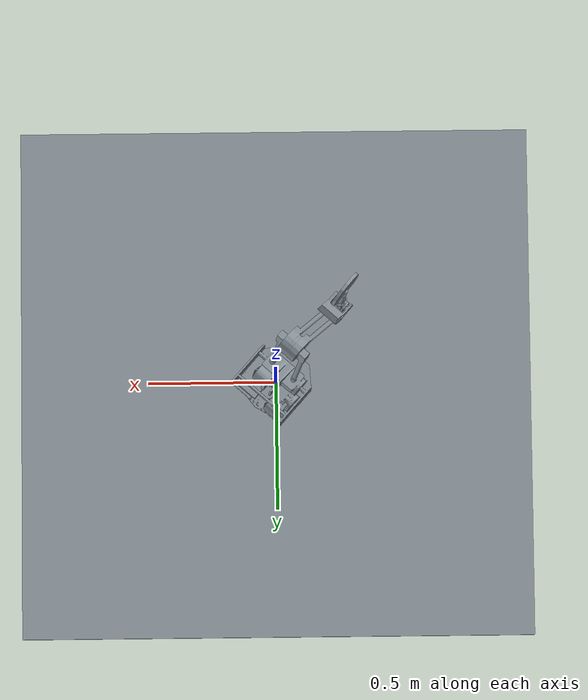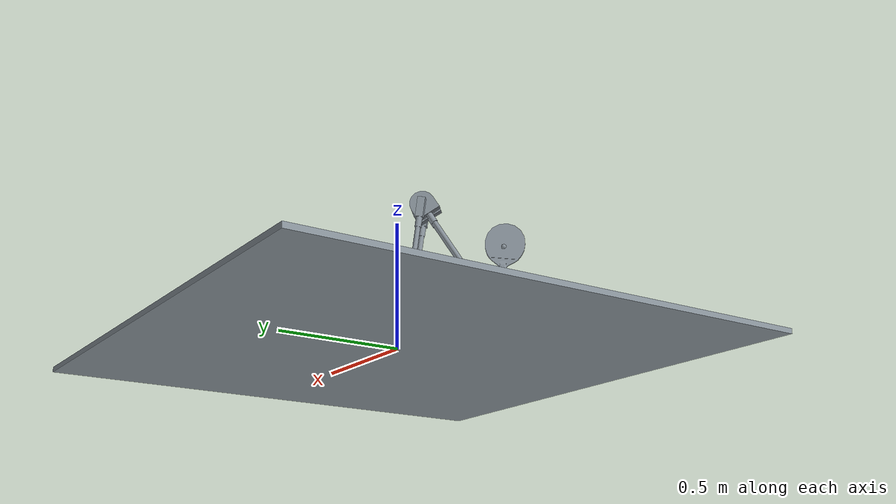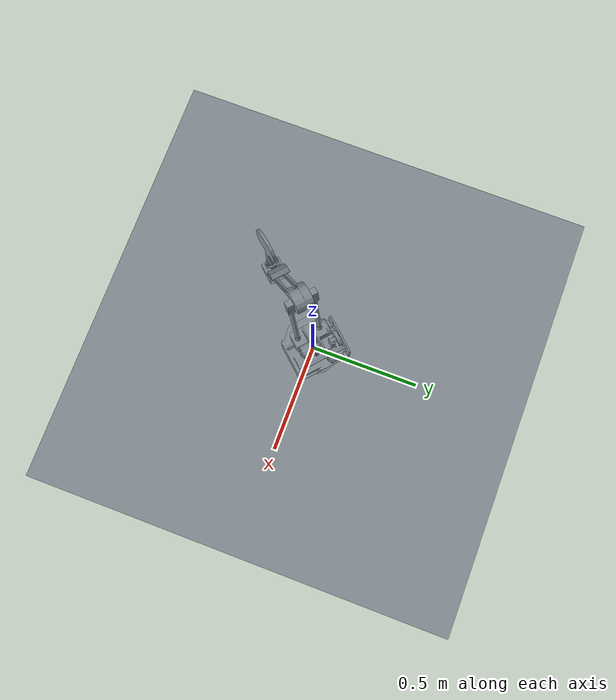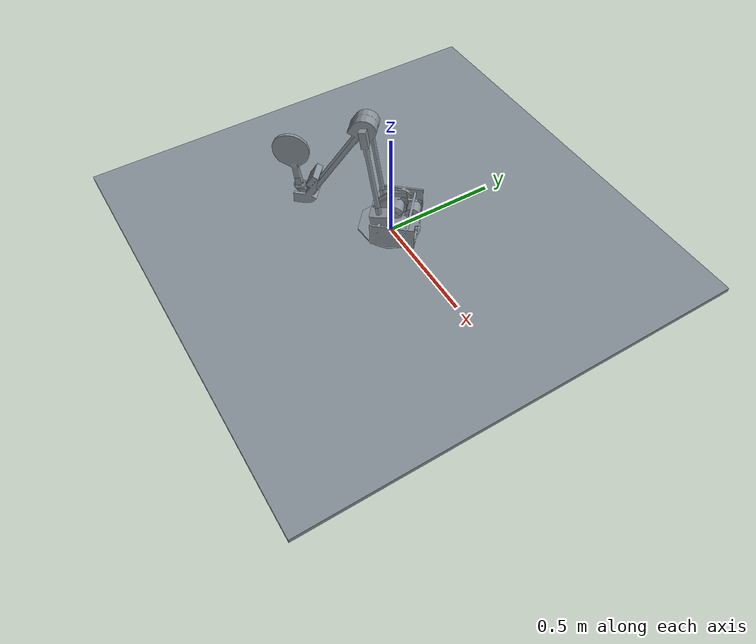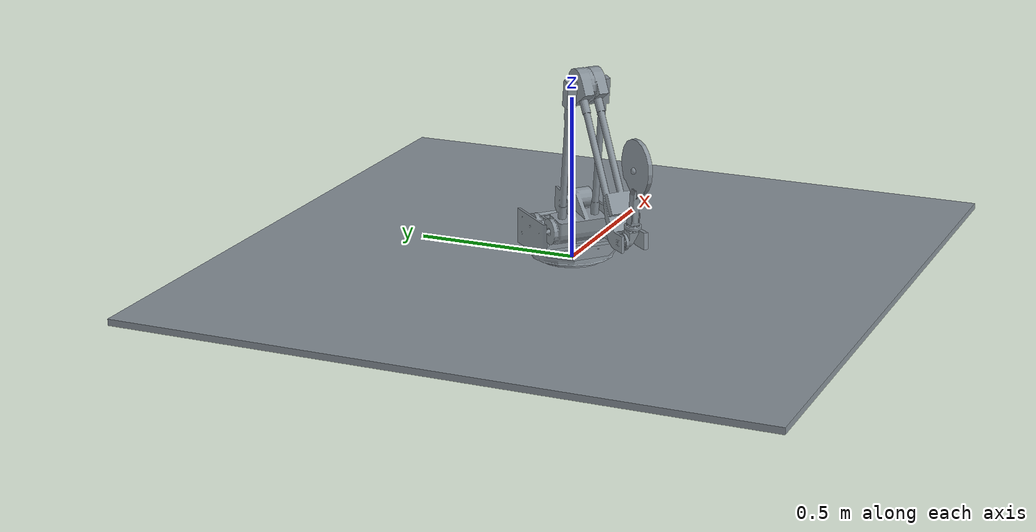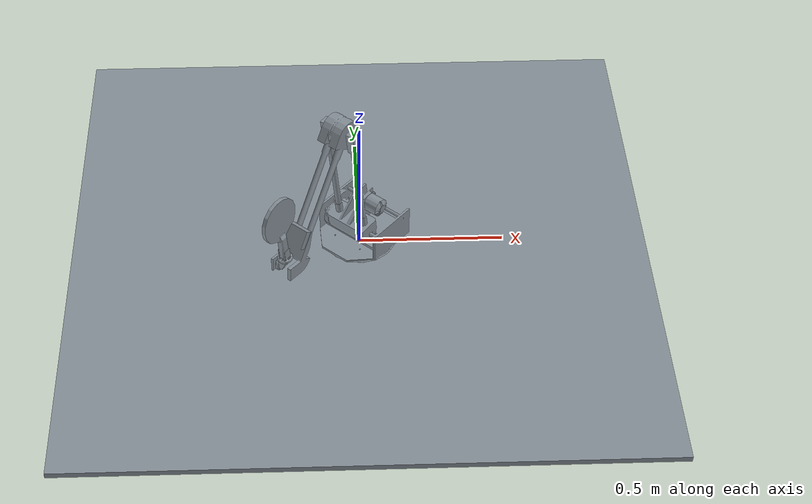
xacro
<?xml version="1.0"?>
<robot xmlns:xacro="http://www.ros.org/wiki/xacro" name="mainarmass">
    <xacro:arg name="initial_positions_file" default="initial_positions.yaml" />

    <!-- Import mainarmass urdf file -->
    <xacro:include filename="$(find mainarmass)/urdf/mainarmass_fixed.urdf" />

    <!-- Import control_xacro -->
    <xacro:include filename="mainarmass.ros2_control.xacro" />

    <xacro:mainarmass_ros2_control name="FakeSystem" initial_positions_file="$(arg initial_positions_file)"/>

</robot>

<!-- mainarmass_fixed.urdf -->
<robot name="mainarmass">
    <material name="black"><color rgba="0.529 0.568 0.6 1" /></material>

    <link name="root">
        <visual>
            <origin xyz="0 0 0" rpy="0 0 0" />
            <geometry><sphere radius="0.001"/></geometry>
            <material name="black" />
        </visual>
    </link>

    <link name="Base">
        <inertial>
            <mass value="0.219" />
            <origin xyz="0 0 0.005" rpy="0 0 0" />
            <inertia ixx="0.0009559" ixy="0" ixz="0" iyy="0.0009559" iyz="0" izz="0.00190814" />
        </inertial>
        <visual>
            <origin xyz="0 0 0" rpy="0 0 0" />
            <geometry><mesh filename="package://mainarmass/meshes/67.stl" scale="1 1 1" /></geometry>
            <material name="black" />
        </visual>
        <collision>
            <origin xyz="0 0 0" rpy="0 0 0" />
            <geometry><mesh filename="package://mainarmass/meshes/67.stl" scale="1 1 1" /></geometry>
        </collision>
    </link>

    <link name="Shoulder">
        <inertial>
            <mass value="3.232" />
            <origin xyz="0.0015 0.0238 0.0500" rpy="0 0 0" />
            <inertia ixx="0.01827653" ixy="0.00349413" ixz="-0.00033063" iyy="0.01968154" iyz="-0.00175414" izz="0.03042546" />
        </inertial>
        <visual>
            <origin xyz="0.0637 0.1917 0.0902" rpy="0 0 0" />
            <geometry><mesh filename="package://mainarmass/meshes/63.stl" scale="1 1 1" /></geometry>
            <material name="black" />
        </visual>
        <collision>
            <origin xyz="0.0637 0.1917 0.0902" rpy="0 0 0" />
            <geometry><mesh filename="package://mainarmass/meshes/63.stl" scale="1 1 1" /></geometry>
        </collision>
    </link>

    <link name="UpperArm">
        <inertial>
            <mass value="1.456" />
            <origin xyz="0.0016 0.0003 0.0734" rpy="0 0 0" />
            <inertia ixx="0.02606584" ixy="-0.00147774" ixz="0.00295468" iyy="0.02661382" iyz="0.00583087" izz="0.00673394" />
        </inertial>
        <visual>
            <origin xyz="-0.0453 0.1279 0.0401" rpy="0 0 0" />
            <geometry><mesh filename="package://mainarmass/meshes/75.stl" scale="1 1 1" /></geometry>
            <material name="black" />
        </visual>
        <collision>
            <origin xyz="-0.0453 0.1279 0.0401" rpy="0 0 0" />
            <geometry><mesh filename="package://mainarmass/meshes/75.stl" scale="1 1 1" /></geometry>
        </collision>
    </link>

    <link name="Forearm">
        <inertial>
            <mass value="0.757" />
            <origin xyz="-0.0255 -0.0694 -0.1516" rpy="0 0 0" />
            <inertia ixx="0.02490527" ixy="-0.00176138" ixz="-0.00375067" iyy="0.02114019" iyz="-0.00953407" izz="0.00606278" />
        </inertial>
        <visual>
            <origin xyz="0.0640 0.2460 -0.3971" rpy="0 0 0" />
            <geometry><mesh filename="package://mainarmass/meshes/79.stl" scale="1 1 1" /></geometry>
            <material name="black" />
        </visual>
        <collision>
            <origin xyz="0.0640 0.2460 -0.3971" rpy="0 0 0" />
            <geometry><mesh filename="package://mainarmass/meshes/79.stl" scale="1 1 1" /></geometry>
        </collision>
    </link>

    <link name="Wrist">
        <inertial>
            <mass value="0.086" />
            <origin xyz="-0.0285 0.0006 0.0133" rpy="0 0 0" />
            <inertia ixx="0.00004728" ixy="-0.00001086" ixz="0.00002008" iyy="0.00005686" iyz="0.00000813" izz="0.00003823" />
        </inertial>
        <visual>
            <origin xyz="0.1232 0.3795 0.0397" rpy="0 0 0" />
            <geometry><mesh filename="package://mainarmass/meshes/59.stl" scale="1 1 1" /></geometry>
            <material name="black" />
        </visual>
        <collision>
            <origin xyz="0.1232 0.3795 0.0397" rpy="0 0 0" />
            <geometry><mesh filename="package://mainarmass/meshes/59.stl" scale="1 1 1" /></geometry>
        </collision>
    </link>

    <link name="Paddle">
        <inertial>
            <mass value="0.355" />
            <origin xyz="-0.0346 -0.0910 0.1368" rpy="0 0 0" />
            <inertia ixx="0.00254292" ixy="-0.0003235" ixz="0.00032513" iyy="0.00177002" iyz="0.00082579" izz="0.00103777" />
        </inertial>
        <visual>
            <origin xyz="0.1494 0.3836 -0.0516" rpy="0 0 0" />
            <geometry><mesh filename="package://mainarmass/meshes/71.stl" scale="1 1 1" /></geometry>
            <material name="black" />
        </visual>
        <collision>
            <origin xyz="0.1494 0.3836 -0.0516" rpy="0 0 0" />
            <geometry><mesh filename="package://mainarmass/meshes/71.stl" scale="1 1 1" /></geometry>
        </collision>
    </link>

    <link name="table_surface">
        <visual>
            <origin xyz="0.0 0.0 -0.01" rpy="0.0 0.0 0.0" />
            <geometry>
            <box size="2.0 2.0 0.02" /> </geometry>
            <material name="black" />
  	</visual>
        <collision>
            <origin xyz="0 0 -0.01" rpy="0 0 0" />
                <geometry>
                    <box size="2.0 2.0 0.02" />
                </geometry>
        </collision>
    </link>

    <link name="paddle_tcp">
        <visual>
            <origin xyz="0.0 0.0 0.0" rpy="0 0 0" />
            <geometry><sphere radius="0.01"/></geometry>
            <material name="black" />
        </visual>
    </link>

<joint name="table_to_base" type="fixed">
  <parent link="Base" />
  <child link="table_surface" />
  <origin xyz="0 0 0" rpy="0 0 0" /> </joint>

    <joint name="root_to_base" type="fixed">
        <origin xyz="0 0 0" rpy="0 0 0" />
        <parent link="root" />
        <child link="Base" />
    </joint>

    <joint name="BaseRotate_0" type="continuous">
        <origin xyz="0 0 0" rpy="0.01712 0.04808 -0.38348" />
        <axis xyz="0.04806 -0.01710 -0.99869" />
        <parent link="Base" />
        <child link="Shoulder" />
        <limit effort="35.0" velocity="5" />
    </joint>

    <joint name="UpperArmRotate_0" type="revolute">
        <origin xyz="-0.01750 -0.03317 0.10511" rpy="-0.08249 -0.02327 0.02051" />
        <axis xyz="0.93476 -0.35525 0" />
        <parent link="Shoulder" />
        <child link="UpperArm" />
        <limit lower="-0.2617" upper="1.3963" effort="30.0" velocity="5" />
    </joint>

    <joint name="ForeArmRotate_0" type="revolute">
        <origin xyz="-0.03355 -0.08830 0.45530" rpy="-0.06873 0.02609 -0.00089" />
        <axis xyz="0.93476 -0.35525 0" />
        <parent link="UpperArm" />
        <child link="Forearm" />
        <limit lower="-4.1888" upper="0.5236" effort="12.0" velocity="5" />
    </joint>

    <joint name="WristRotate_0" type="revolute">
        <origin xyz="-0.10957 -0.19888 -0.43388" rpy="-0.84990 0.27810 3.0151" />
        <axis xyz="0.93476 -0.35525 0" />
        <parent link="Forearm" />
        <child link="Wrist" />
        <limit lower="-2.967" upper="0.2618" effort="0.75" velocity="5" />
    </joint>

    <joint name="PaddleRotate_0" type="continuous">
        <origin xyz="-0.04174 -0.00429 0.02647" rpy="0 0 0" />
        <axis xyz="0.20602 0.54209 -0.81467" />
        <parent link="Wrist" />
        <child link="Paddle" />
        <limit effort="0.75" velocity="5" />
    </joint>

    <joint name="paddle_to_tcp" type="fixed">
        <parent link="Paddle" />
        <child link="paddle_tcp" />
	<origin xyz="-0.033 -0.105 0.149" rpy="-0.587 0.245 -1.933" />
    </joint>
</robot>
